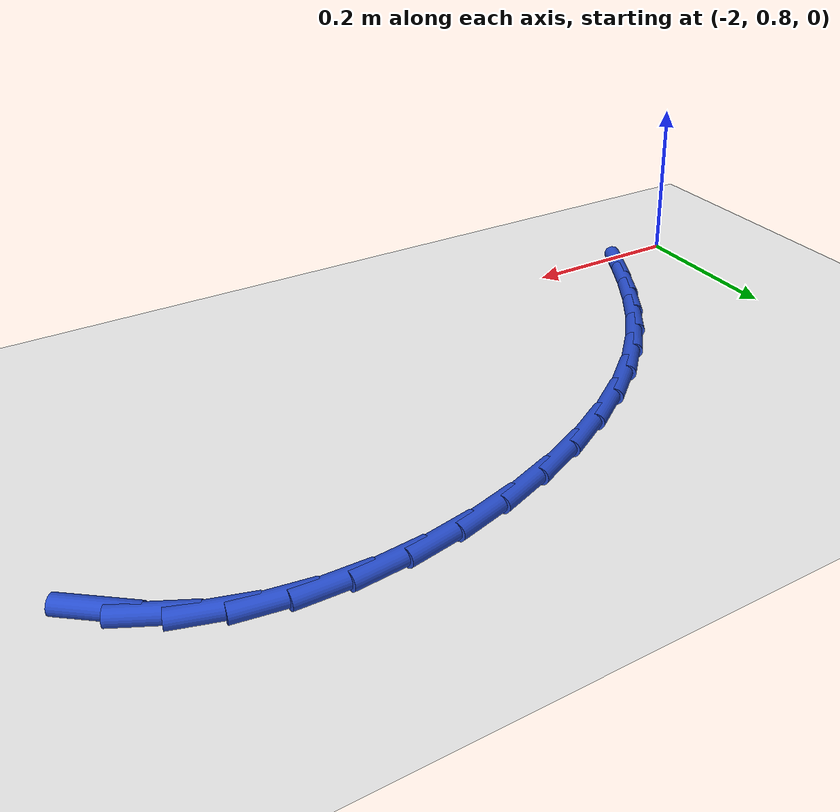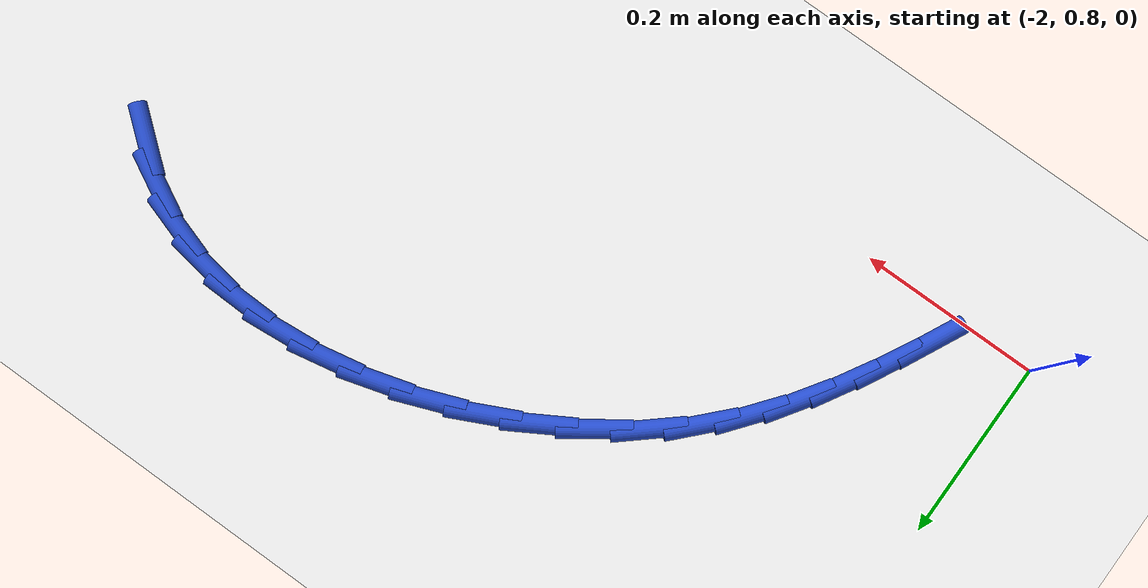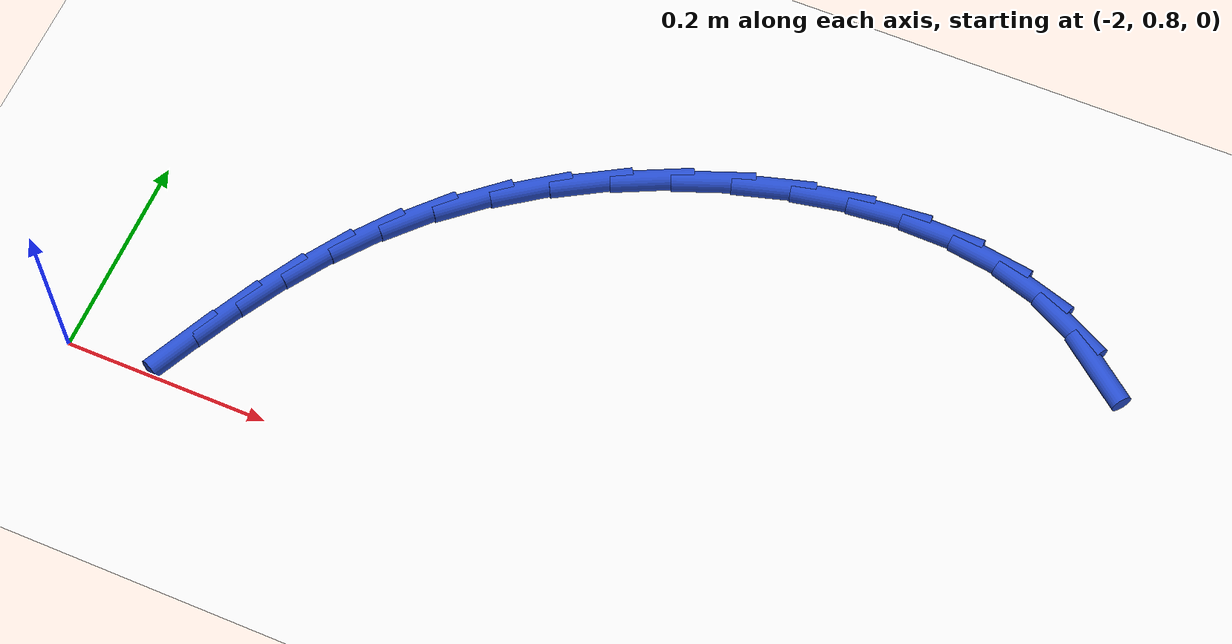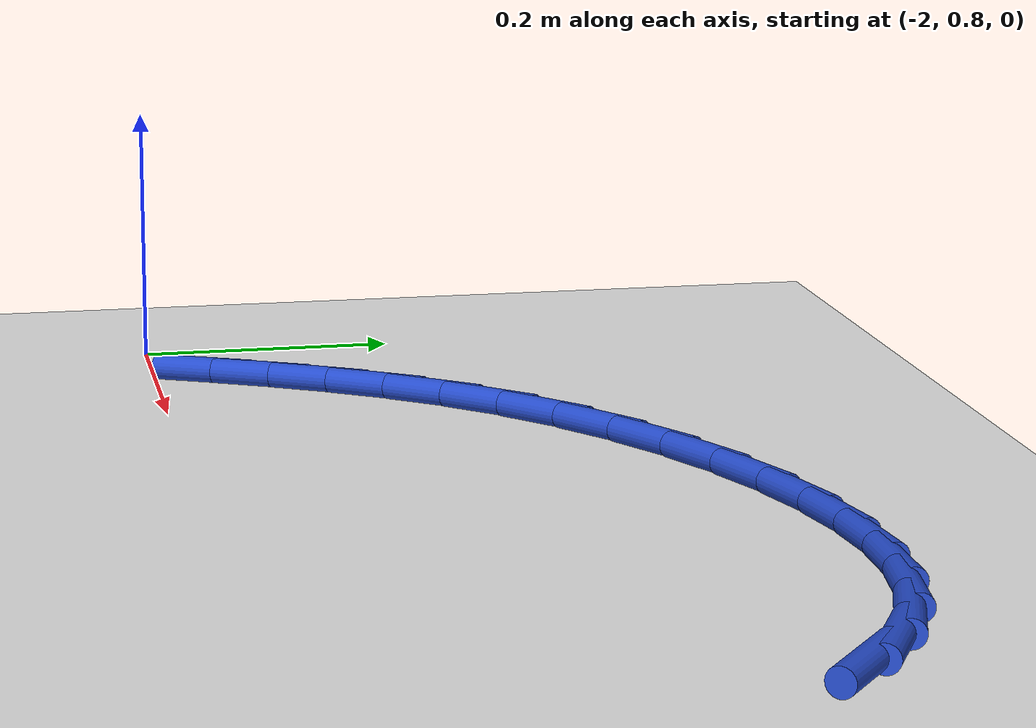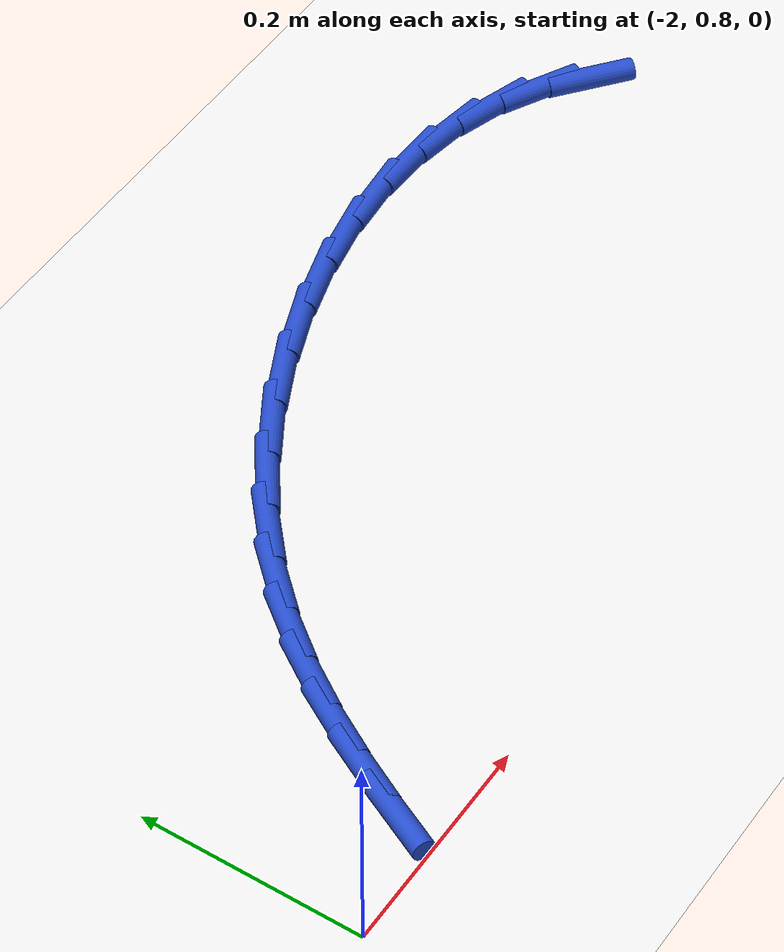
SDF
<sdf version="1.6">
 <world name="default">
  <model name="ground_plane">
   <static>1</static>
   <link name="link">
    <collision name="collision">
     <geometry><plane><normal>0 0 1</normal><size>100 100</size></plane></geometry>
     <surface><friction><ode><mu>100</mu><mu2>50</mu2></ode></friction></surface>
    </collision>
    <visual name="visual">
     <cast_shadows>0</cast_shadows>
     <geometry><plane><normal>0 0 1</normal><size>100 100</size></plane></geometry>
     <material>
      <script><uri>file://media/materials/scripts/gazebo.material</uri><name>Gazebo/WhiteGlow</name></script>
     </material>
    </visual>
   </link>
  </model>
  <model name="line">
   <link name="link_37">
    <pose>-1.1214014624738773 1.140117806307576 0.01 0 1.57 -0.6801421170573124</pose>
    <collision name="collision">
     <geometry><cylinder><radius>0.01</radius><length>0.08</length></cylinder></geometry>
    </collision>
    <visual name="visual">
     <material>
      <script><name>Gazebo/Blue</name><uri>file://media/materials/scripts/gazebo.material</uri></script>
     </material>
     <geometry><cylinder><radius>0.01</radius><length>0.08</length></cylinder></geometry>
    </visual>
   </link>
   <link name="link_38">
    <pose>-1.1592090393875638 1.170700221218077 0.01 0 1.57 -0.4831215529222764</pose>
    <collision name="collision">
     <geometry><cylinder><radius>0.01</radius><length>0.08</length></cylinder></geometry>
    </collision>
    <visual name="visual">
     <material>
      <script><name>Gazebo/Blue</name><uri>file://media/materials/scripts/gazebo.material</uri></script>
     </material>
     <geometry><cylinder><radius>0.01</radius><length>0.08</length></cylinder></geometry>
    </visual>
   </link>
   <link name="link_39">
    <pose>-1.2021414602996265 1.1932219218281757 0.01 0 1.57 -0.3065482753140255</pose>
    <collision name="collision">
     <geometry><cylinder><radius>0.01</radius><length>0.08</length></cylinder></geometry>
    </collision>
    <visual name="visual">
     <material>
      <script><name>Gazebo/Blue</name><uri>file://media/materials/scripts/gazebo.material</uri></script>
     </material>
     <geometry><cylinder><radius>0.01</radius><length>0.08</length></cylinder></geometry>
    </visual>
   </link>
   <link name="link_40">
    <pose>-1.2493070188444522 1.2081510374278424 0.01 0 1.57 -0.15331371193521254</pose>
    <collision name="collision">
     <geometry><cylinder><radius>0.01</radius><length>0.08</length></cylinder></geometry>
    </collision>
    <visual name="visual">
     <material>
      <script><name>Gazebo/Blue</name><uri>file://media/materials/scripts/gazebo.material</uri></script>
     </material>
     <geometry><cylinder><radius>0.01</radius><length>0.08</length></cylinder></geometry>
    </visual>
   </link>
   <link name="link_41">
    <pose>-1.2998140086564274 1.2159556973070471 0.01 0 1.57 -0.021680980756804104</pose>
    <collision name="collision">
     <geometry><cylinder><radius>0.01</radius><length>0.08</length></cylinder></geometry>
    </collision>
    <visual name="visual">
     <material>
      <script><name>Gazebo/Blue</name><uri>file://media/materials/scripts/gazebo.material</uri></script>
     </material>
     <geometry><cylinder><radius>0.01</radius><length>0.08</length></cylinder></geometry>
    </visual>
   </link>
   <link name="link_42">
    <pose>-1.352770723369938 1.2171040307557592 0.01 0 1.57 0.09218752684752034</pose>
    <collision name="collision">
     <geometry><cylinder><radius>0.01</radius><length>0.08</length></cylinder></geometry>
    </collision>
    <visual name="visual">
     <material>
      <script><name>Gazebo/Blue</name><uri>file://media/materials/scripts/gazebo.material</uri></script>
     </material>
     <geometry><cylinder><radius>0.01</radius><length>0.08</length></cylinder></geometry>
    </visual>
   </link>
   <link name="link_43">
    <pose>-1.4072854566193707 1.212064167063949 0.01 0 1.57 0.19257677746905266</pose>
    <collision name="collision">
     <geometry><cylinder><radius>0.01</radius><length>0.08</length></cylinder></geometry>
    </collision>
    <visual name="visual">
     <material>
      <script><name>Gazebo/Blue</name><uri>file://media/materials/scripts/gazebo.material</uri></script>
     </material>
     <geometry><cylinder><radius>0.01</radius><length>0.08</length></cylinder></geometry>
    </visual>
   </link>
   <link name="link_44">
    <pose>-1.462466502039111 1.2013042355215848 0.01 0 1.57 0.28351132039232285</pose>
    <collision name="collision">
     <geometry><cylinder><radius>0.01</radius><length>0.08</length></cylinder></geometry>
    </collision>
    <visual name="visual">
     <material>
      <script><name>Gazebo/Blue</name><uri>file://media/materials/scripts/gazebo.material</uri></script>
     </material>
     <geometry><cylinder><radius>0.01</radius><length>0.08</length></cylinder></geometry>
    </visual>
   </link>
   <link name="link_45">
    <pose>-1.5174221532635468 1.185292365418638 0.01 0 1.57 0.3686057370730551</pose>
    <collision name="collision">
     <geometry><cylinder><radius>0.01</radius><length>0.08</length></cylinder></geometry>
    </collision>
    <visual name="visual">
     <material>
      <script><name>Gazebo/Blue</name><uri>file://media/materials/scripts/gazebo.material</uri></script>
     </material>
     <geometry><cylinder><radius>0.01</radius><length>0.08</length></cylinder></geometry>
    </visual>
   </link>
   <link name="link_46">
    <pose>-1.5712607039270623 1.1644966860450774 0.01 0 1.57 0.4511685297060466</pose>
    <collision name="collision">
     <geometry><cylinder><radius>0.01</radius><length>0.08</length></cylinder></geometry>
    </collision>
    <visual name="visual">
     <material>
      <script><name>Gazebo/Blue</name><uri>file://media/materials/scripts/gazebo.material</uri></script>
     </material>
     <geometry><cylinder><radius>0.01</radius><length>0.08</length></cylinder></geometry>
    </visual>
   </link>
   <link name="link_47">
    <pose>-1.6230904476640458 1.1393853266908733 0.01 0 1.57 0.5344074956620822</pose>
    <collision name="collision">
     <geometry><cylinder><radius>0.01</radius><length>0.08</length></cylinder></geometry>
    </collision>
    <visual name="visual">
     <material>
      <script><name>Gazebo/Blue</name><uri>file://media/materials/scripts/gazebo.material</uri></script>
     </material>
     <geometry><cylinder><radius>0.01</radius><length>0.08</length></cylinder></geometry>
    </visual>
   </link>
   <link name="link_48">
    <pose>-1.6720196781088825 1.1104264166459952 0.01 0 1.57 0.6216799573938817</pose>
    <collision name="collision">
     <geometry><cylinder><radius>0.01</radius><length>0.08</length></cylinder></geometry>
    </collision>
    <visual name="visual">
     <material>
      <script><name>Gazebo/Blue</name><uri>file://media/materials/scripts/gazebo.material</uri></script>
     </material>
     <geometry><cylinder><radius>0.01</radius><length>0.08</length></cylinder></geometry>
    </visual>
   </link>
   <link name="link_49">
    <pose>-1.7171566888959586 1.0780880852004127 0.01 0 1.57 0.7167222215268402</pose>
    <collision name="collision">
     <geometry><cylinder><radius>0.01</radius><length>0.08</length></cylinder></geometry>
    </collision>
    <visual name="visual">
     <material>
      <script><name>Gazebo/Blue</name><uri>file://media/materials/scripts/gazebo.material</uri></script>
     </material>
     <geometry><cylinder><radius>0.01</radius><length>0.08</length></cylinder></geometry>
    </visual>
   </link>
   <link name="link_50">
    <pose>-1.7576139667790667 1.04283825370918 0.01 0 1.57 0.8168830074227434</pose>
    <collision name="collision">
     <geometry><cylinder><radius>0.01</radius><length>0.08</length></cylinder></geometry>
    </collision>
    <visual name="visual">
     <material>
      <script><name>Gazebo/Blue</name><uri>file://media/materials/scripts/gazebo.material</uri></script>
     </material>
     <geometry><cylinder><radius>0.01</radius><length>0.08</length></cylinder></geometry>
    </visual>
   </link>
   <link name="link_51">
    <pose>-1.7930300399470722 1.005118757367901 0.01 0 1.57 0.9083321926003661</pose>
    <collision name="collision">
     <geometry><cylinder><radius>0.01</radius><length>0.08</length></cylinder></geometry>
    </collision>
    <visual name="visual">
     <material>
      <script><name>Gazebo/Blue</name><uri>file://media/materials/scripts/gazebo.material</uri></script>
     </material>
     <geometry><cylinder><radius>0.01</radius><length>0.08</length></cylinder></geometry>
    </visual>
   </link>
   <link name="link_52">
    <pose>-1.8240752884031552 0.9653202623022881 0.01 0 1.57 0.9860888631982911</pose>
    <collision name="collision">
     <geometry><cylinder><radius>0.01</radius><length>0.08</length></cylinder></geometry>
    </collision>
    <visual name="visual">
     <material>
      <script><name>Gazebo/Blue</name><uri>file://media/materials/scripts/gazebo.material</uri></script>
     </material>
     <geometry><cylinder><radius>0.01</radius><length>0.08</length></cylinder></geometry>
    </visual>
   </link>
   <link name="link_53">
    <pose>-1.8515400815448524 0.9238274844176625 0.01 0 1.57 1.0478502974705735</pose>
    <collision name="collision">
     <geometry><cylinder><radius>0.01</radius><length>0.08</length></cylinder></geometry>
    </collision>
    <visual name="visual">
     <material>
      <script><name>Gazebo/Blue</name><uri>file://media/materials/scripts/gazebo.material</uri></script>
     </material>
     <geometry><cylinder><radius>0.01</radius><length>0.08</length></cylinder></geometry>
    </visual>
   </link>
   <link name="link_54">
    <pose>-1.8762147887696987 0.8810251396193443 0.01 0 1.57 1.092414519392502</pose>
    <collision name="collision">
     <geometry><cylinder><radius>0.01</radius><length>0.08</length></cylinder></geometry>
    </collision>
    <visual name="visual">
     <material>
      <script><name>Gazebo/Blue</name><uri>file://media/materials/scripts/gazebo.material</uri></script>
     </material>
     <geometry><cylinder><radius>0.01</radius><length>0.08</length></cylinder></geometry>
    </visual>
   </link>
   <link name="link_55">
    <pose>-1.898889779475232 0.8372979438126558 0.01 0 1.57 1.119293939073383</pose>
    <collision name="collision">
     <geometry><cylinder><radius>0.01</radius><length>0.08</length></cylinder></geometry>
    </collision>
    <visual name="visual">
     <material>
      <script><name>Gazebo/Blue</name><uri>file://media/materials/scripts/gazebo.material</uri></script>
     </material>
     <geometry><cylinder><radius>0.01</radius><length>0.08</length></cylinder></geometry>
    </visual>
   </link>
  </model>
 </world>
</sdf>
